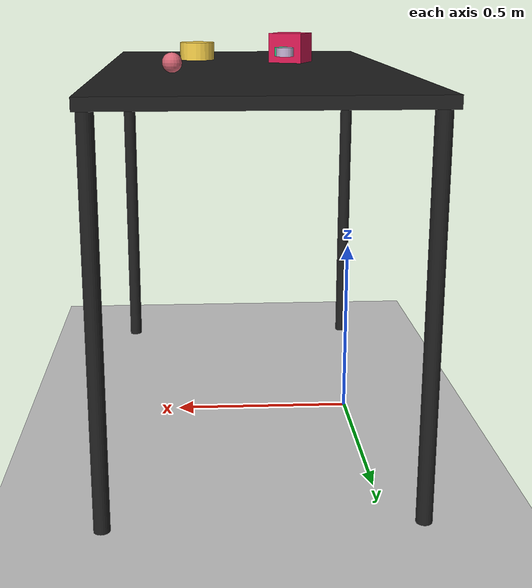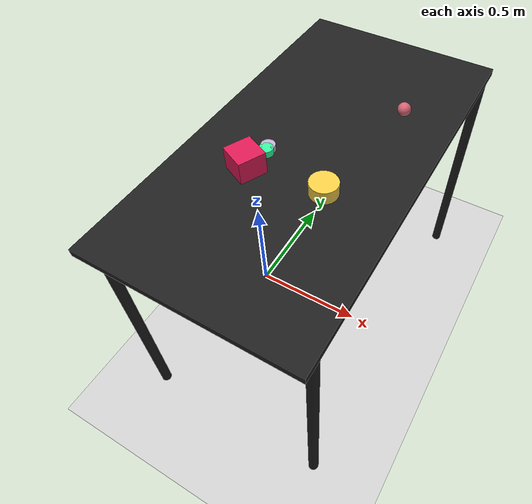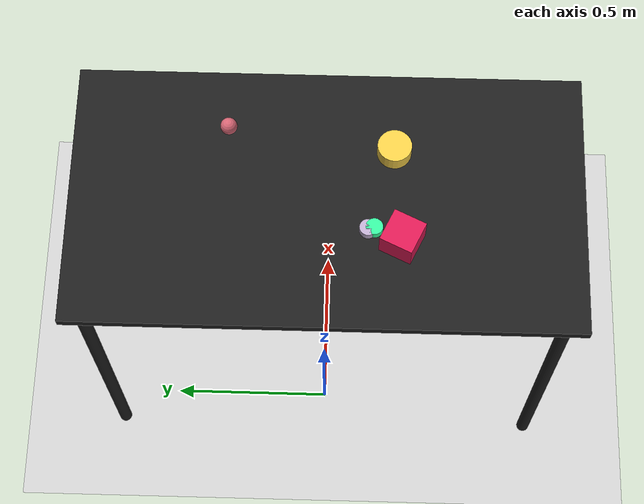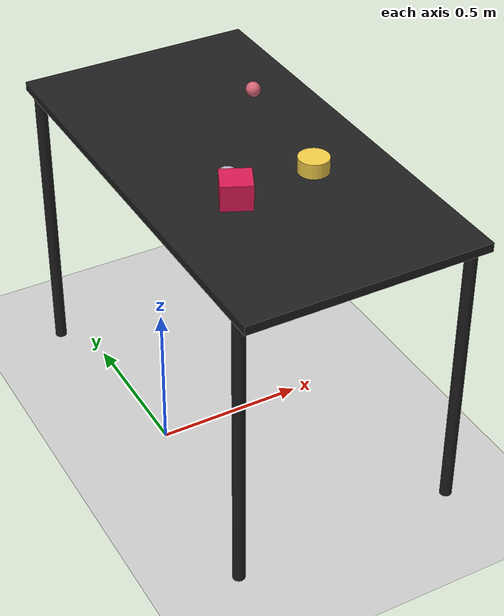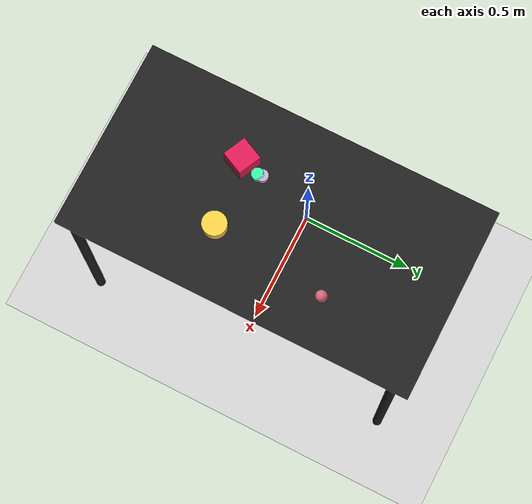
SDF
<?xml version="1.0" ?>
<sdf version="1.6">
  <world name="arm_world">
    <plugin filename="gz-sim-physics-system" name="gz::sim::systems::Physics">
      <engine>
        <filename>libgz-physics-bullet-featherstone-plugin.so</filename>
      </engine>
    </plugin>
    <plugin filename="gz-sim-user-commands-system" name="gz::sim::systems::UserCommands"/>
    <plugin filename="gz-sim-scene-broadcaster-system" name="gz::sim::systems::SceneBroadcaster"/>
    <plugin filename="gz-sim-sensors-system" name="gz::sim::systems::Sensors">
      <render_engine>ogre2</render_engine>
    </plugin>
    <gravity>0.0 0.0 -9.8</gravity>
    <scene>
      <shadows>false</shadows>
    </scene>
    <gui>
      <camera name="user_camera">
        <pose>0.75 -0.75 1.4 0 0.29 2.21</pose>
      </camera>
    </gui>
    <include>
      <uri>https://fuel.gazebosim.org/1.0/OpenRobotics/models/Sun</uri>
    </include>
    <model name="table">
      <static>true</static>
      <include>
        <uri>model://table</uri>
      </include>
      <pose>0.29 0 0 0 0 1.5708</pose>
    </model>
    <model name="ground_plane">
      <static>true</static>
      <link name="link">
        <collision name="collision">
          <geometry>
            <plane>
              <normal>0 0 1</normal>
            </plane>
          </geometry>
          <surface>
            <friction>
              <ode>
                <mu>1.0</mu>
                <mu2>1.0</mu2>
              </ode>
            </friction>
          </surface>
        </collision>
        <visual name="visual">
          <geometry>
            <plane>
              <normal>0 0 1</normal>
              <size>100 100</size>
            </plane>
          </geometry>
          <material>
            <ambient>0.8 0.8 0.8 1</ambient>
            <diffuse>0.8 0.8 0.8 1</diffuse>
            <specular>0.8 0.8 0.8 1</specular>
          </material>
        </visual>
      </link>
    </model>
    <model name="cylinder_m_0">
      <pose>0.182 -0.138 1.05 0 0 3.3</pose>
      <link name="cylinder_m_0_link">
        <inertial>
          <mass>0.05</mass>
          <inertia>
            <ixx>2.04e-7</ixx>
            <iyy>2.04e-7</iyy>
            <izz>3.9e-8</izz>
            <ixy>0</ixy>
            <ixz>0</ixz>
            <iyz>0</iyz>
          </inertia>
        </inertial>
        <collision name="cylinder_m_0_collision">
          <geometry>
            <cylinder>
              <radius>0.025</radius>
              <length>0.025</length>
            </cylinder>
          </geometry>
          <surface>
            <friction>
              <ode>
                <mu>0.8</mu>
                <mu2>0.8</mu2>
                <fdir1>0 0 1</fdir1>
                <slip1>0.001</slip1>
                <slip2>0.001</slip2>
              </ode>
              <torsional>
                <coefficient>0.1</coefficient>
                <surface_radius>0.015</surface_radius>
                <use_patch_radius>true</use_patch_radius>
              </torsional>
            </friction>
            <contact>
              <ode>
                <kp>1e5</kp>
                <kd>10</kd>
                <max_vel>0.1</max_vel>
                <min_depth>0.001</min_depth>
                <soft_cfm>0.01</soft_cfm>
                <soft_erp>0.2</soft_erp>
              </ode>
            </contact>
            <bounce>
              <restitution_coefficient>0.2</restitution_coefficient>
              <threshold>0.01</threshold>
            </bounce>
          </surface>
        </collision>
        <visual name="cylinder_m_0_visual">
          <geometry>
            <cylinder>
              <radius>0.025</radius>
              <length>0.025</length>
            </cylinder>
          </geometry>
          <material>
            <ambient>0.21 1.0 0.62 1</ambient>
            <diffuse>0.21 1.0 0.62 1</diffuse>
          </material>
        </visual>
        <velocity_decay>
          <linear>1</linear>
          <angular>1</angular>
        </velocity_decay>
      </link>
    </model>
    <model name="sphere_m_1">
      <pose>0.495 0.292 1.05 0 0 0.21</pose>
      <link name="sphere_m_1_link">
        <inertial>
          <mass>0.05</mass>
          <inertia>
            <ixx>2.04e-7</ixx>
            <iyy>2.04e-7</iyy>
            <izz>3.9e-8</izz>
            <ixy>0</ixy>
            <ixz>0</ixz>
            <iyz>0</iyz>
          </inertia>
        </inertial>
        <collision name="sphere_m_1_collision">
          <geometry>
            <sphere>
              <radius>0.025</radius>
            </sphere>
          </geometry>
          <surface>
            <friction>
              <ode>
                <mu>0.8</mu>
                <mu2>0.8</mu2>
                <fdir1>0 0 1</fdir1>
                <slip1>0.001</slip1>
                <slip2>0.001</slip2>
              </ode>
              <torsional>
                <coefficient>0.1</coefficient>
                <surface_radius>0.015</surface_radius>
                <use_patch_radius>true</use_patch_radius>
              </torsional>
            </friction>
            <contact>
              <ode>
                <kp>1e5</kp>
                <kd>10</kd>
                <max_vel>0.1</max_vel>
                <min_depth>0.001</min_depth>
                <soft_cfm>0.01</soft_cfm>
                <soft_erp>0.2</soft_erp>
              </ode>
            </contact>
            <bounce>
              <restitution_coefficient>0.2</restitution_coefficient>
              <threshold>0.01</threshold>
            </bounce>
          </surface>
        </collision>
        <visual name="sphere_m_1_visual">
          <geometry>
            <sphere>
              <radius>0.025</radius>
            </sphere>
          </geometry>
          <material>
            <ambient>0.83 0.39 0.45 1</ambient>
            <diffuse>0.83 0.39 0.45 1</diffuse>
          </material>
        </visual>
        <velocity_decay>
          <linear>1</linear>
          <angular>1</angular>
        </velocity_decay>
      </link>
    </model>
    <model name="cylinder_m_2">
      <pose>0.179 -0.12 1.05 0 0 1.58</pose>
      <link name="cylinder_m_2_link">
        <inertial>
          <mass>0.05</mass>
          <inertia>
            <ixx>2.04e-7</ixx>
            <iyy>2.04e-7</iyy>
            <izz>3.9e-8</izz>
            <ixy>0</ixy>
            <ixz>0</ixz>
            <iyz>0</iyz>
          </inertia>
        </inertial>
        <collision name="cylinder_m_2_collision">
          <geometry>
            <cylinder>
              <radius>0.025</radius>
              <length>0.025</length>
            </cylinder>
          </geometry>
          <surface>
            <friction>
              <ode>
                <mu>0.8</mu>
                <mu2>0.8</mu2>
                <fdir1>0 0 1</fdir1>
                <slip1>0.001</slip1>
                <slip2>0.001</slip2>
              </ode>
              <torsional>
                <coefficient>0.1</coefficient>
                <surface_radius>0.015</surface_radius>
                <use_patch_radius>true</use_patch_radius>
              </torsional>
            </friction>
            <contact>
              <ode>
                <kp>1e5</kp>
                <kd>10</kd>
                <max_vel>0.1</max_vel>
                <min_depth>0.001</min_depth>
                <soft_cfm>0.01</soft_cfm>
                <soft_erp>0.2</soft_erp>
              </ode>
            </contact>
            <bounce>
              <restitution_coefficient>0.2</restitution_coefficient>
              <threshold>0.01</threshold>
            </bounce>
          </surface>
        </collision>
        <visual name="cylinder_m_2_visual">
          <geometry>
            <cylinder>
              <radius>0.025</radius>
              <length>0.025</length>
            </cylinder>
          </geometry>
          <material>
            <ambient>0.75 0.68 0.81 1</ambient>
            <diffuse>0.75 0.68 0.81 1</diffuse>
          </material>
        </visual>
        <velocity_decay>
          <linear>1</linear>
          <angular>1</angular>
        </velocity_decay>
      </link>
    </model>
    <model name="cylinder_l_3">
      <pose>0.432 -0.193 1.05 0 0 2.29</pose>
      <link name="cylinder_l_3_link">
        <inertial>
          <mass>0.05</mass>
          <inertia>
            <ixx>2.04e-7</ixx>
            <iyy>2.04e-7</iyy>
            <izz>3.9e-8</izz>
            <ixy>0</ixy>
            <ixz>0</ixz>
            <iyz>0</iyz>
          </inertia>
        </inertial>
        <collision name="cylinder_l_3_collision">
          <geometry>
            <cylinder>
              <radius>0.05</radius>
              <length>0.05</length>
            </cylinder>
          </geometry>
          <surface>
            <friction>
              <ode>
                <mu>0.8</mu>
                <mu2>0.8</mu2>
                <fdir1>0 0 1</fdir1>
                <slip1>0.001</slip1>
                <slip2>0.001</slip2>
              </ode>
              <torsional>
                <coefficient>0.1</coefficient>
                <surface_radius>0.015</surface_radius>
                <use_patch_radius>true</use_patch_radius>
              </torsional>
            </friction>
            <contact>
              <ode>
                <kp>1e5</kp>
                <kd>10</kd>
                <max_vel>0.1</max_vel>
                <min_depth>0.001</min_depth>
                <soft_cfm>0.01</soft_cfm>
                <soft_erp>0.2</soft_erp>
              </ode>
            </contact>
            <bounce>
              <restitution_coefficient>0.2</restitution_coefficient>
              <threshold>0.01</threshold>
            </bounce>
          </surface>
        </collision>
        <visual name="cylinder_l_3_visual">
          <geometry>
            <cylinder>
              <radius>0.05</radius>
              <length>0.05</length>
            </cylinder>
          </geometry>
          <material>
            <ambient>0.95 0.8 0.28 1</ambient>
            <diffuse>0.95 0.8 0.28 1</diffuse>
          </material>
        </visual>
        <velocity_decay>
          <linear>1</linear>
          <angular>1</angular>
        </velocity_decay>
      </link>
    </model>
    <model name="cube_l_4">
      <pose>0.154 -0.218 1.05 0 0 1.13</pose>
      <link name="cube_l_4_link">
        <inertial>
          <mass>0.05</mass>
          <inertia>
            <ixx>2.04e-7</ixx>
            <iyy>2.04e-7</iyy>
            <izz>3.9e-8</izz>
            <ixy>0</ixy>
            <ixz>0</ixz>
            <iyz>0</iyz>
          </inertia>
        </inertial>
        <collision name="cube_l_4_collision">
          <geometry>
            <box>
              <size>0.1 0.1 0.1</size>
            </box>
          </geometry>
          <surface>
            <friction>
              <ode>
                <mu>0.8</mu>
                <mu2>0.8</mu2>
                <fdir1>0 0 1</fdir1>
                <slip1>0.001</slip1>
                <slip2>0.001</slip2>
              </ode>
              <torsional>
                <coefficient>0.1</coefficient>
                <surface_radius>0.015</surface_radius>
                <use_patch_radius>true</use_patch_radius>
              </torsional>
            </friction>
            <contact>
              <ode>
                <kp>1e5</kp>
                <kd>10</kd>
                <max_vel>0.1</max_vel>
                <min_depth>0.001</min_depth>
                <soft_cfm>0.01</soft_cfm>
                <soft_erp>0.2</soft_erp>
              </ode>
            </contact>
            <bounce>
              <restitution_coefficient>0.2</restitution_coefficient>
              <threshold>0.01</threshold>
            </bounce>
          </surface>
        </collision>
        <visual name="cube_l_4_visual">
          <geometry>
            <box>
              <size>0.1 0.1 0.1</size>
            </box>
          </geometry>
          <material>
            <ambient>0.86 0.1 0.33 1</ambient>
            <diffuse>0.86 0.1 0.33 1</diffuse>
          </material>
        </visual>
        <velocity_decay>
          <linear>1</linear>
          <angular>1</angular>
        </velocity_decay>
      </link>
    </model>
  </world>
</sdf>

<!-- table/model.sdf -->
<sdf version="1.5">
  <model name="table">
    <static>true</static>
    <link name="link">
      <collision name="surface">
        <pose>0 0 1.0 0 0 0</pose>
        <geometry>
          <box>
            <size>1.5 0.8 0.03</size>
          </box>
        </geometry>
        <surface>
          <friction>
            <ode>
              <mu>0.6</mu>
              <mu2>0.6</mu2>
            </ode>
          </friction>
        </surface>
      </collision>
      <visual name="surface">
        <pose>0 0 1.0 0 0 0</pose>
        <geometry>
          <box>
            <size>1.5 0.8 0.03</size>
          </box>
        </geometry>
        <material>
          <script>
            <uri>file://media/materials/scripts/gazebo.material</uri>
            <name>Gazebo/Black</name>
          </script>
        </material>
      </visual>
      <collision name="front_left_leg">
        <pose>0.68 0.38 0.5 0 0 0</pose>
        <geometry>
          <cylinder>
            <radius>0.02</radius>
            <length>1.0</length>
          </cylinder>
        </geometry>
      </collision>
      <visual name="front_left_leg">
        <pose>0.68 0.38 0.5 0 0 0</pose>
        <geometry>
          <cylinder>
            <radius>0.02</radius>
            <length>1.0</length>
          </cylinder>
        </geometry>
        <material>
          <script>
            <uri>file://media/materials/scripts/gazebo.material</uri>
            <name>Gazebo/Black</name>
          </script>
        </material>
      </visual>
      <collision name="front_right_leg">
        <pose>0.68 -0.38 0.5 0 0 0</pose>
        <geometry>
          <cylinder>
            <radius>0.02</radius>
            <length>1.0</length>
          </cylinder>
        </geometry>
      </collision>
      <visual name="front_right_leg">
        <pose>0.68 -0.38 0.5 0 0 0</pose>
        <geometry>
          <cylinder>
            <radius>0.02</radius>
            <length>1.0</length>
          </cylinder>
        </geometry>
        <material>
          <script>
            <uri>file://media/materials/scripts/gazebo.material</uri>
            <name>Gazebo/Black</name>
          </script>
        </material>
      </visual>
      <collision name="back_right_leg">
        <pose>-0.68 -0.38 0.5 0 0 0</pose>
        <geometry>
          <cylinder>
            <radius>0.02</radius>
            <length>1.0</length>
          </cylinder>
        </geometry>
      </collision>
      <visual name="back_right_leg">
        <pose>-0.68 -0.38 0.5 0 0 0</pose>
        <geometry>
          <cylinder>
            <radius>0.02</radius>
            <length>1.0</length>
          </cylinder>
        </geometry>
        <material>
          <script>
            <uri>file://media/materials/scripts/gazebo.material</uri>
            <name>Gazebo/Black</name>
          </script>
        </material>
      </visual>
      <collision name="back_left_leg">
        <pose>-0.68 0.38 0.5 0 0 0</pose>
        <geometry>
          <cylinder>
            <radius>0.02</radius>
            <length>1.0</length>
          </cylinder>
        </geometry>
      </collision>
      <visual name="back_left_leg">
        <pose>-0.68 0.38 0.5 0 0 0</pose>
        <geometry>
          <cylinder>
            <radius>0.02</radius>
            <length>1.0</length>
          </cylinder>
        </geometry>
        <material>
          <script>
            <uri>file://media/materials/scripts/gazebo.material</uri>
            <name>Gazebo/Black</name>
          </script>
        </material>
      </visual>
    </link>
  </model>
</sdf>
